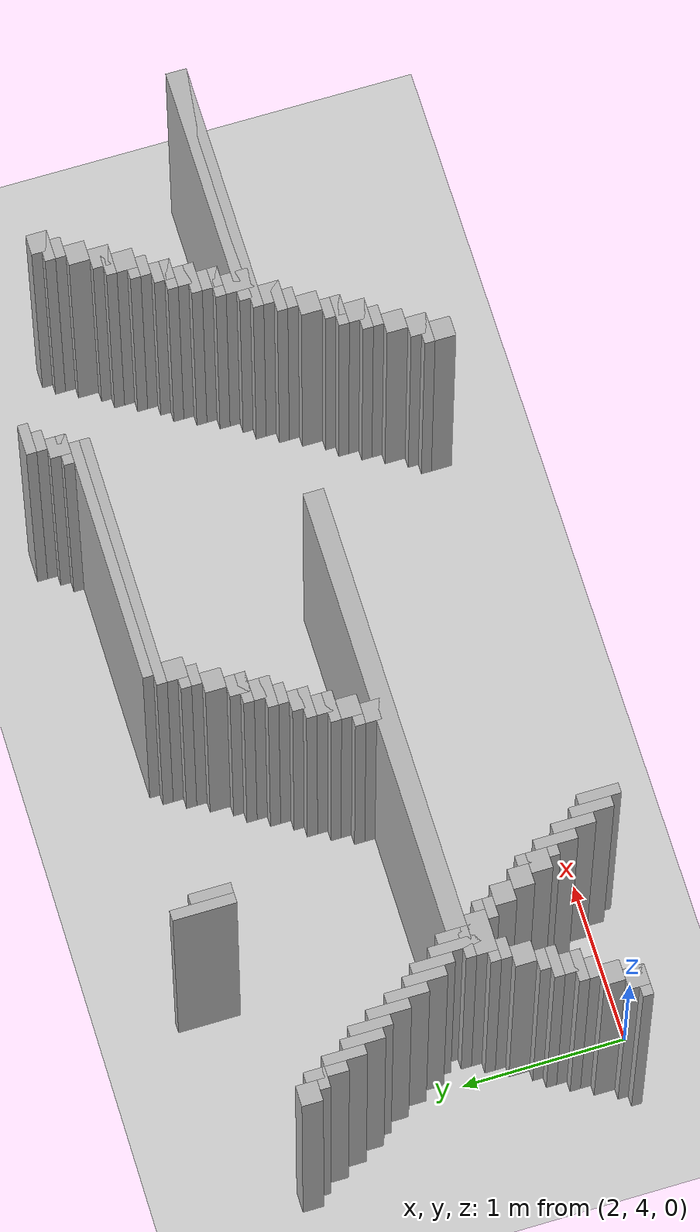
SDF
<sdf version="1.6">
 <world name="slam_world">
  <model name="ground_plane">
   <static>true</static>
   <link name="link">
    <collision name="collision">
     <geometry><plane><normal>0 0 1</normal><size>100 100</size></plane></geometry>
    </collision>
    <visual name="visual">
     <geometry><plane><normal>0 0 1</normal><size>100 100</size></plane></geometry>
     <material>
      <ambient>0.8 0.8 0.8 1</ambient>
      <diffuse>0.8 0.8 0.8 1</diffuse>
      <specular>0.8 0.8 0.8 1</specular>
     </material>
    </visual>
   </link>
  </model>
  <model name="wall_1708">
   <static>true</static>
   <pose>2.840425531914893 6.319148936170213 1.0 0 0 0</pose>
   <link name="link">
    <collision name="collision">
     <geometry><box><size>0.06382978723404255 0.3829787234042553 2.0</size></box></geometry>
    </collision>
    <visual name="visual">
     <geometry><box><size>0.06382978723404255 0.3829787234042553 2.0</size></box></geometry>
     <material><ambient>0.5 0.5 0.5 1</ambient><diffuse>0.7 0.7 0.7 1</diffuse></material>
    </visual>
   </link>
  </model>
  <model name="wall_1709">
   <static>true</static>
   <pose>5.904255319148936 6.478723404255319 1.0 0 0 0</pose>
   <link name="link">
    <collision name="collision">
     <geometry><box><size>0.19148936170212766 0.06382978723404255 2.0</size></box></geometry>
    </collision>
    <visual name="visual">
     <geometry><box><size>0.19148936170212766 0.06382978723404255 2.0</size></box></geometry>
     <material><ambient>0.5 0.5 0.5 1</ambient><diffuse>0.7 0.7 0.7 1</diffuse></material>
    </visual>
   </link>
  </model>
  <model name="wall_1716">
   <static>true</static>
   <pose>5.872340425531914 6.414893617021276 1.0 0 0 0</pose>
   <link name="link">
    <collision name="collision">
     <geometry><box><size>0.1276595744680851 0.06382978723404255 2.0</size></box></geometry>
    </collision>
    <visual name="visual">
     <geometry><box><size>0.1276595744680851 0.06382978723404255 2.0</size></box></geometry>
     <material><ambient>0.5 0.5 0.5 1</ambient><diffuse>0.7 0.7 0.7 1</diffuse></material>
    </visual>
   </link>
  </model>
  <model name="wall_1720">
   <static>true</static>
   <pose>2.9042553191489358 6.25531914893617 1.0 0 0 0</pose>
   <link name="link">
    <collision name="collision">
     <geometry><box><size>0.06382978723404255 0.2553191489361702 2.0</size></box></geometry>
    </collision>
    <visual name="visual">
     <geometry><box><size>0.06382978723404255 0.2553191489361702 2.0</size></box></geometry>
     <material><ambient>0.5 0.5 0.5 1</ambient><diffuse>0.7 0.7 0.7 1</diffuse></material>
    </visual>
   </link>
  </model>
  <model name="wall_1721">
   <static>true</static>
   <pose>5.8085106382978715 6.319148936170213 1.0 0 0 0</pose>
   <link name="link">
    <collision name="collision">
     <geometry><box><size>0.1276595744680851 0.1276595744680851 2.0</size></box></geometry>
    </collision>
    <visual name="visual">
     <geometry><box><size>0.1276595744680851 0.1276595744680851 2.0</size></box></geometry>
     <material><ambient>0.5 0.5 0.5 1</ambient><diffuse>0.7 0.7 0.7 1</diffuse></material>
    </visual>
   </link>
  </model>
  <model name="wall_1725">
   <static>true</static>
   <pose>5.776595744680851 6.287234042553191 1.0 0 0 0</pose>
   <link name="link">
    <collision name="collision">
     <geometry><box><size>0.19148936170212766 0.06382978723404255 2.0</size></box></geometry>
    </collision>
    <visual name="visual">
     <geometry><box><size>0.19148936170212766 0.06382978723404255 2.0</size></box></geometry>
     <material><ambient>0.5 0.5 0.5 1</ambient><diffuse>0.7 0.7 0.7 1</diffuse></material>
    </visual>
   </link>
  </model>
  <model name="wall_1728">
   <static>true</static>
   <pose>5.042553191489361 6.191489361702128 1.0 0 0 0</pose>
   <link name="link">
    <collision name="collision">
     <geometry><box><size>1.5319148936170213 0.1276595744680851 2.0</size></box></geometry>
    </collision>
    <visual name="visual">
     <geometry><box><size>1.5319148936170213 0.1276595744680851 2.0</size></box></geometry>
     <material><ambient>0.5 0.5 0.5 1</ambient><diffuse>0.7 0.7 0.7 1</diffuse></material>
    </visual>
   </link>
  </model>
  <model name="wall_1733">
   <static>true</static>
   <pose>5.01063829787234 6.159574468085106 1.0 0 0 0</pose>
   <link name="link">
    <collision name="collision">
     <geometry><box><size>1.5957446808510638 0.06382978723404255 2.0</size></box></geometry>
    </collision>
    <visual name="visual">
     <geometry><box><size>1.5957446808510638 0.06382978723404255 2.0</size></box></geometry>
     <material><ambient>0.5 0.5 0.5 1</ambient><diffuse>0.7 0.7 0.7 1</diffuse></material>
    </visual>
   </link>
  </model>
  <model name="wall_1738">
   <static>true</static>
   <pose>1.5957446808510638 6.063829787234042 1.0 0 0 0</pose>
   <link name="link">
    <collision name="collision">
     <geometry><box><size>0.1276595744680851 0.1276595744680851 2.0</size></box></geometry>
    </collision>
    <visual name="visual">
     <geometry><box><size>0.1276595744680851 0.1276595744680851 2.0</size></box></geometry>
     <material><ambient>0.5 0.5 0.5 1</ambient><diffuse>0.7 0.7 0.7 1</diffuse></material>
    </visual>
   </link>
  </model>
  <model name="wall_1739">
   <static>true</static>
   <pose>4.276595744680851 6.063829787234042 1.0 0 0 0</pose>
   <link name="link">
    <collision name="collision">
     <geometry><box><size>0.1276595744680851 0.1276595744680851 2.0</size></box></geometry>
    </collision>
    <visual name="visual">
     <geometry><box><size>0.1276595744680851 0.1276595744680851 2.0</size></box></geometry>
     <material><ambient>0.5 0.5 0.5 1</ambient><diffuse>0.7 0.7 0.7 1</diffuse></material>
    </visual>
   </link>
  </model>
  <model name="wall_1740">
   <static>true</static>
   <pose>7.085106382978723 6.063829787234042 1.0 0 0 0</pose>
   <link name="link">
    <collision name="collision">
     <geometry><box><size>0.1276595744680851 0.1276595744680851 2.0</size></box></geometry>
    </collision>
    <visual name="visual">
     <geometry><box><size>0.1276595744680851 0.1276595744680851 2.0</size></box></geometry>
     <material><ambient>0.5 0.5 0.5 1</ambient><diffuse>0.7 0.7 0.7 1</diffuse></material>
    </visual>
   </link>
  </model>
  <model name="wall_1743">
   <static>true</static>
   <pose>1.6914893617021276 5.936170212765957 1.0 0 0 0</pose>
   <link name="link">
    <collision name="collision">
     <geometry><box><size>0.06382978723404255 0.2553191489361702 2.0</size></box></geometry>
    </collision>
    <visual name="visual">
     <geometry><box><size>0.06382978723404255 0.2553191489361702 2.0</size></box></geometry>
     <material><ambient>0.5 0.5 0.5 1</ambient><diffuse>0.7 0.7 0.7 1</diffuse></material>
    </visual>
   </link>
  </model>
  <model name="wall_1744">
   <static>true</static>
   <pose>4.24468085106383 6.031914893617021 1.0 0 0 0</pose>
   <link name="link">
    <collision name="collision">
     <geometry><box><size>0.19148936170212766 0.06382978723404255 2.0</size></box></geometry>
    </collision>
    <visual name="visual">
     <geometry><box><size>0.19148936170212766 0.06382978723404255 2.0</size></box></geometry>
     <material><ambient>0.5 0.5 0.5 1</ambient><diffuse>0.7 0.7 0.7 1</diffuse></material>
    </visual>
   </link>
  </model>
  <model name="wall_1745">
   <static>true</static>
   <pose>7.053191489361701 6.031914893617021 1.0 0 0 0</pose>
   <link name="link">
    <collision name="collision">
     <geometry><box><size>0.19148936170212766 0.06382978723404255 2.0</size></box></geometry>
    </collision>
    <visual name="visual">
     <geometry><box><size>0.19148936170212766 0.06382978723404255 2.0</size></box></geometry>
     <material><ambient>0.5 0.5 0.5 1</ambient><diffuse>0.7 0.7 0.7 1</diffuse></material>
    </visual>
   </link>
  </model>
  <model name="wall_1750">
   <static>true</static>
   <pose>1.6595744680851063 5.968085106382978 1.0 0 0 0</pose>
   <link name="link">
    <collision name="collision">
     <geometry><box><size>0.1276595744680851 0.06382978723404255 2.0</size></box></geometry>
    </collision>
    <visual name="visual">
     <geometry><box><size>0.1276595744680851 0.06382978723404255 2.0</size></box></geometry>
     <material><ambient>0.5 0.5 0.5 1</ambient><diffuse>0.7 0.7 0.7 1</diffuse></material>
    </visual>
   </link>
  </model>
  <model name="wall_1751">
   <static>true</static>
   <pose>4.212765957446808 5.968085106382978 1.0 0 0 0</pose>
   <link name="link">
    <collision name="collision">
     <geometry><box><size>0.1276595744680851 0.06382978723404255 2.0</size></box></geometry>
    </collision>
    <visual name="visual">
     <geometry><box><size>0.1276595744680851 0.06382978723404255 2.0</size></box></geometry>
     <material><ambient>0.5 0.5 0.5 1</ambient><diffuse>0.7 0.7 0.7 1</diffuse></material>
    </visual>
   </link>
  </model>
  <model name="wall_1752">
   <static>true</static>
   <pose>7.0212765957446805 5.968085106382978 1.0 0 0 0</pose>
   <link name="link">
    <collision name="collision">
     <geometry><box><size>0.1276595744680851 0.06382978723404255 2.0</size></box></geometry>
    </collision>
    <visual name="visual">
     <geometry><box><size>0.1276595744680851 0.06382978723404255 2.0</size></box></geometry>
     <material><ambient>0.5 0.5 0.5 1</ambient><diffuse>0.7 0.7 0.7 1</diffuse></material>
    </visual>
   </link>
  </model>
  <model name="wall_1759">
   <static>true</static>
   <pose>1.7553191489361701 5.8085106382978715 1.0 0 0 0</pose>
   <link name="link">
    <collision name="collision">
     <geometry><box><size>0.06382978723404255 0.2553191489361702 2.0</size></box></geometry>
    </collision>
    <visual name="visual">
     <geometry><box><size>0.06382978723404255 0.2553191489361702 2.0</size></box></geometry>
     <material><ambient>0.5 0.5 0.5 1</ambient><diffuse>0.7 0.7 0.7 1</diffuse></material>
    </visual>
   </link>
  </model>
  <model name="wall_1760">
   <static>true</static>
   <pose>4.148936170212766 5.872340425531914 1.0 0 0 0</pose>
   <link name="link">
    <collision name="collision">
     <geometry><box><size>0.1276595744680851 0.1276595744680851 2.0</size></box></geometry>
    </collision>
    <visual name="visual">
     <geometry><box><size>0.1276595744680851 0.1276595744680851 2.0</size></box></geometry>
     <material><ambient>0.5 0.5 0.5 1</ambient><diffuse>0.7 0.7 0.7 1</diffuse></material>
    </visual>
   </link>
  </model>
  <model name="wall_1761">
   <static>true</static>
   <pose>6.957446808510638 5.872340425531914 1.0 0 0 0</pose>
   <link name="link">
    <collision name="collision">
     <geometry><box><size>0.1276595744680851 0.1276595744680851 2.0</size></box></geometry>
    </collision>
    <visual name="visual">
     <geometry><box><size>0.1276595744680851 0.1276595744680851 2.0</size></box></geometry>
     <material><ambient>0.5 0.5 0.5 1</ambient><diffuse>0.7 0.7 0.7 1</diffuse></material>
    </visual>
   </link>
  </model>
  <model name="wall_1768">
   <static>true</static>
   <pose>1.8191489361702127 5.680851063829786 1.0 0 0 0</pose>
   <link name="link">
    <collision name="collision">
     <geometry><box><size>0.06382978723404255 0.2553191489361702 2.0</size></box></geometry>
    </collision>
    <visual name="visual">
     <geometry><box><size>0.06382978723404255 0.2553191489361702 2.0</size></box></geometry>
     <material><ambient>0.5 0.5 0.5 1</ambient><diffuse>0.7 0.7 0.7 1</diffuse></material>
    </visual>
   </link>
  </model>
  <model name="wall_1769">
   <static>true</static>
   <pose>4.085106382978723 5.744680851063829 1.0 0 0 0</pose>
   <link name="link">
    <collision name="collision">
     <geometry><box><size>0.1276595744680851 0.1276595744680851 2.0</size></box></geometry>
    </collision>
    <visual name="visual">
     <geometry><box><size>0.1276595744680851 0.1276595744680851 2.0</size></box></geometry>
     <material><ambient>0.5 0.5 0.5 1</ambient><diffuse>0.7 0.7 0.7 1</diffuse></material>
    </visual>
   </link>
  </model>
  <model name="wall_1770">
   <static>true</static>
   <pose>6.8936170212765955 5.744680851063829 1.0 0 0 0</pose>
   <link name="link">
    <collision name="collision">
     <geometry><box><size>0.1276595744680851 0.1276595744680851 2.0</size></box></geometry>
    </collision>
    <visual name="visual">
     <geometry><box><size>0.1276595744680851 0.1276595744680851 2.0</size></box></geometry>
     <material><ambient>0.5 0.5 0.5 1</ambient><diffuse>0.7 0.7 0.7 1</diffuse></material>
    </visual>
   </link>
  </model>
  <model name="wall_1777">
   <static>true</static>
   <pose>1.8829787234042552 5.617021276595744 1.0 0 0 0</pose>
   <link name="link">
    <collision name="collision">
     <geometry><box><size>0.06382978723404255 0.2553191489361702 2.0</size></box></geometry>
    </collision>
    <visual name="visual">
     <geometry><box><size>0.06382978723404255 0.2553191489361702 2.0</size></box></geometry>
     <material><ambient>0.5 0.5 0.5 1</ambient><diffuse>0.7 0.7 0.7 1</diffuse></material>
    </visual>
   </link>
  </model>
  <model name="wall_1778">
   <static>true</static>
   <pose>4.053191489361701 5.712765957446808 1.0 0 0 0</pose>
   <link name="link">
    <collision name="collision">
     <geometry><box><size>0.19148936170212766 0.06382978723404255 2.0</size></box></geometry>
    </collision>
    <visual name="visual">
     <geometry><box><size>0.19148936170212766 0.06382978723404255 2.0</size></box></geometry>
     <material><ambient>0.5 0.5 0.5 1</ambient><diffuse>0.7 0.7 0.7 1</diffuse></material>
    </visual>
   </link>
  </model>
  <model name="wall_1779">
   <static>true</static>
   <pose>6.861702127659574 5.712765957446808 1.0 0 0 0</pose>
   <link name="link">
    <collision name="collision">
     <geometry><box><size>0.19148936170212766 0.06382978723404255 2.0</size></box></geometry>
    </collision>
    <visual name="visual">
     <geometry><box><size>0.19148936170212766 0.06382978723404255 2.0</size></box></geometry>
     <material><ambient>0.5 0.5 0.5 1</ambient><diffuse>0.7 0.7 0.7 1</diffuse></material>
    </visual>
   </link>
  </model>
  <model name="wall_1785">
   <static>true</static>
   <pose>4.0212765957446805 5.617021276595744 1.0 0 0 0</pose>
   <link name="link">
    <collision name="collision">
     <geometry><box><size>0.1276595744680851 0.1276595744680851 2.0</size></box></geometry>
    </collision>
    <visual name="visual">
     <geometry><box><size>0.1276595744680851 0.1276595744680851 2.0</size></box></geometry>
     <material><ambient>0.5 0.5 0.5 1</ambient><diffuse>0.7 0.7 0.7 1</diffuse></material>
    </visual>
   </link>
  </model>
  <model name="wall_1786">
   <static>true</static>
   <pose>6.829787234042553 5.617021276595744 1.0 0 0 0</pose>
   <link name="link">
    <collision name="collision">
     <geometry><box><size>0.1276595744680851 0.1276595744680851 2.0</size></box></geometry>
    </collision>
    <visual name="visual">
     <geometry><box><size>0.1276595744680851 0.1276595744680851 2.0</size></box></geometry>
     <material><ambient>0.5 0.5 0.5 1</ambient><diffuse>0.7 0.7 0.7 1</diffuse></material>
    </visual>
   </link>
  </model>
  <model name="wall_1792">
   <static>true</static>
   <pose>1.9468085106382977 5.489361702127659 1.0 0 0 0</pose>
   <link name="link">
    <collision name="collision">
     <geometry><box><size>0.06382978723404255 0.2553191489361702 2.0</size></box></geometry>
    </collision>
    <visual name="visual">
     <geometry><box><size>0.06382978723404255 0.2553191489361702 2.0</size></box></geometry>
     <material><ambient>0.5 0.5 0.5 1</ambient><diffuse>0.7 0.7 0.7 1</diffuse></material>
    </visual>
   </link>
  </model>
  <model name="wall_1793">
   <static>true</static>
   <pose>3.9893617021276593 5.585106382978723 1.0 0 0 0</pose>
   <link name="link">
    <collision name="collision">
     <geometry><box><size>0.19148936170212766 0.06382978723404255 2.0</size></box></geometry>
    </collision>
    <visual name="visual">
     <geometry><box><size>0.19148936170212766 0.06382978723404255 2.0</size></box></geometry>
     <material><ambient>0.5 0.5 0.5 1</ambient><diffuse>0.7 0.7 0.7 1</diffuse></material>
    </visual>
   </link>
  </model>
  <model name="wall_1794">
   <static>true</static>
   <pose>6.797872340425531 5.585106382978723 1.0 0 0 0</pose>
   <link name="link">
    <collision name="collision">
     <geometry><box><size>0.19148936170212766 0.06382978723404255 2.0</size></box></geometry>
    </collision>
    <visual name="visual">
     <geometry><box><size>0.19148936170212766 0.06382978723404255 2.0</size></box></geometry>
     <material><ambient>0.5 0.5 0.5 1</ambient><diffuse>0.7 0.7 0.7 1</diffuse></material>
    </visual>
   </link>
  </model>
  <model name="wall_1800">
   <static>true</static>
   <pose>3.957446808510638 5.5212765957446805 1.0 0 0 0</pose>
   <link name="link">
    <collision name="collision">
     <geometry><box><size>0.1276595744680851 0.06382978723404255 2.0</size></box></geometry>
    </collision>
    <visual name="visual">
     <geometry><box><size>0.1276595744680851 0.06382978723404255 2.0</size></box></geometry>
     <material><ambient>0.5 0.5 0.5 1</ambient><diffuse>0.7 0.7 0.7 1</diffuse></material>
    </visual>
   </link>
  </model>
  <model name="wall_1801">
   <static>true</static>
   <pose>6.76595744680851 5.5212765957446805 1.0 0 0 0</pose>
   <link name="link">
    <collision name="collision">
     <geometry><box><size>0.1276595744680851 0.06382978723404255 2.0</size></box></geometry>
    </collision>
    <visual name="visual">
     <geometry><box><size>0.1276595744680851 0.06382978723404255 2.0</size></box></geometry>
     <material><ambient>0.5 0.5 0.5 1</ambient><diffuse>0.7 0.7 0.7 1</diffuse></material>
    </visual>
   </link>
  </model>
  <model name="wall_1806">
   <static>true</static>
   <pose>2.0106382978723403 5.361702127659574 1.0 0 0 0</pose>
   <link name="link">
    <collision name="collision">
     <geometry><box><size>0.06382978723404255 0.2553191489361702 2.0</size></box></geometry>
    </collision>
    <visual name="visual">
     <geometry><box><size>0.06382978723404255 0.2553191489361702 2.0</size></box></geometry>
     <material><ambient>0.5 0.5 0.5 1</ambient><diffuse>0.7 0.7 0.7 1</diffuse></material>
    </visual>
   </link>
  </model>
  <model name="wall_1807">
   <static>true</static>
   <pose>3.8936170212765955 5.425531914893616 1.0 0 0 0</pose>
   <link name="link">
    <collision name="collision">
     <geometry><box><size>0.1276595744680851 0.1276595744680851 2.0</size></box></geometry>
    </collision>
    <visual name="visual">
     <geometry><box><size>0.1276595744680851 0.1276595744680851 2.0</size></box></geometry>
     <material><ambient>0.5 0.5 0.5 1</ambient><diffuse>0.7 0.7 0.7 1</diffuse></material>
    </visual>
   </link>
  </model>
  <model name="wall_1808">
   <static>true</static>
   <pose>6.702127659574468 5.425531914893616 1.0 0 0 0</pose>
   <link name="link">
    <collision name="collision">
     <geometry><box><size>0.1276595744680851 0.1276595744680851 2.0</size></box></geometry>
    </collision>
    <visual name="visual">
     <geometry><box><size>0.1276595744680851 0.1276595744680851 2.0</size></box></geometry>
     <material><ambient>0.5 0.5 0.5 1</ambient><diffuse>0.7 0.7 0.7 1</diffuse></material>
    </visual>
   </link>
  </model>
  <model name="wall_1814">
   <static>true</static>
   <pose>3.861702127659574 5.3936170212765955 1.0 0 0 0</pose>
   <link name="link">
    <collision name="collision">
     <geometry><box><size>0.19148936170212766 0.06382978723404255 2.0</size></box></geometry>
    </collision>
    <visual name="visual">
     <geometry><box><size>0.19148936170212766 0.06382978723404255 2.0</size></box></geometry>
     <material><ambient>0.5 0.5 0.5 1</ambient><diffuse>0.7 0.7 0.7 1</diffuse></material>
    </visual>
   </link>
  </model>
  <model name="wall_1815">
   <static>true</static>
   <pose>6.670212765957446 5.3936170212765955 1.0 0 0 0</pose>
   <link name="link">
    <collision name="collision">
     <geometry><box><size>0.19148936170212766 0.06382978723404255 2.0</size></box></geometry>
    </collision>
    <visual name="visual">
     <geometry><box><size>0.19148936170212766 0.06382978723404255 2.0</size></box></geometry>
     <material><ambient>0.5 0.5 0.5 1</ambient><diffuse>0.7 0.7 0.7 1</diffuse></material>
    </visual>
   </link>
  </model>
  <model name="wall_1820">
   <static>true</static>
   <pose>2.074468085106383 5.234042553191489 1.0 0 0 0</pose>
   <link name="link">
    <collision name="collision">
     <geometry><box><size>0.06382978723404255 0.2553191489361702 2.0</size></box></geometry>
    </collision>
    <visual name="visual">
     <geometry><box><size>0.06382978723404255 0.2553191489361702 2.0</size></box></geometry>
     <material><ambient>0.5 0.5 0.5 1</ambient><diffuse>0.7 0.7 0.7 1</diffuse></material>
    </visual>
   </link>
  </model>
  <model name="wall_1821">
   <static>true</static>
   <pose>3.829787234042553 5.297872340425531 1.0 0 0 0</pose>
   <link name="link">
    <collision name="collision">
     <geometry><box><size>0.1276595744680851 0.1276595744680851 2.0</size></box></geometry>
    </collision>
    <visual name="visual">
     <geometry><box><size>0.1276595744680851 0.1276595744680851 2.0</size></box></geometry>
     <material><ambient>0.5 0.5 0.5 1</ambient><diffuse>0.7 0.7 0.7 1</diffuse></material>
    </visual>
   </link>
  </model>
  <model name="wall_1822">
   <static>true</static>
   <pose>6.638297872340425 5.297872340425531 1.0 0 0 0</pose>
   <link name="link">
    <collision name="collision">
     <geometry><box><size>0.1276595744680851 0.1276595744680851 2.0</size></box></geometry>
    </collision>
    <visual name="visual">
     <geometry><box><size>0.1276595744680851 0.1276595744680851 2.0</size></box></geometry>
     <material><ambient>0.5 0.5 0.5 1</ambient><diffuse>0.7 0.7 0.7 1</diffuse></material>
    </visual>
   </link>
  </model>
  <model name="wall_1829">
   <static>true</static>
   <pose>2.1382978723404253 5.170212765957446 1.0 0 0 0</pose>
   <link name="link">
    <collision name="collision">
     <geometry><box><size>0.06382978723404255 0.2553191489361702 2.0</size></box></geometry>
    </collision>
    <visual name="visual">
     <geometry><box><size>0.06382978723404255 0.2553191489361702 2.0</size></box></geometry>
     <material><ambient>0.5 0.5 0.5 1</ambient><diffuse>0.7 0.7 0.7 1</diffuse></material>
    </visual>
   </link>
  </model>
  <model name="wall_1830">
   <static>true</static>
   <pose>3.7978723404255317 5.26595744680851 1.0 0 0 0</pose>
   <link name="link">
    <collision name="collision">
     <geometry><box><size>0.19148936170212766 0.06382978723404255 2.0</size></box></geometry>
    </collision>
    <visual name="visual">
     <geometry><box><size>0.19148936170212766 0.06382978723404255 2.0</size></box></geometry>
     <material><ambient>0.5 0.5 0.5 1</ambient><diffuse>0.7 0.7 0.7 1</diffuse></material>
    </visual>
   </link>
  </model>
  <model name="wall_1831">
   <static>true</static>
   <pose>6.606382978723404 5.26595744680851 1.0 0 0 0</pose>
   <link name="link">
    <collision name="collision">
     <geometry><box><size>0.19148936170212766 0.06382978723404255 2.0</size></box></geometry>
    </collision>
    <visual name="visual">
     <geometry><box><size>0.19148936170212766 0.06382978723404255 2.0</size></box></geometry>
     <material><ambient>0.5 0.5 0.5 1</ambient><diffuse>0.7 0.7 0.7 1</diffuse></material>
    </visual>
   </link>
  </model>
  <model name="wall_1837">
   <static>true</static>
   <pose>3.7659574468085104 5.170212765957446 1.0 0 0 0</pose>
   <link name="link">
    <collision name="collision">
     <geometry><box><size>0.1276595744680851 0.1276595744680851 2.0</size></box></geometry>
    </collision>
    <visual name="visual">
     <geometry><box><size>0.1276595744680851 0.1276595744680851 2.0</size></box></geometry>
     <material><ambient>0.5 0.5 0.5 1</ambient><diffuse>0.7 0.7 0.7 1</diffuse></material>
    </visual>
   </link>
  </model>
  <model name="wall_1838">
   <static>true</static>
   <pose>6.574468085106383 5.170212765957446 1.0 0 0 0</pose>
   <link name="link">
    <collision name="collision">
     <geometry><box><size>0.1276595744680851 0.1276595744680851 2.0</size></box></geometry>
    </collision>
    <visual name="visual">
     <geometry><box><size>0.1276595744680851 0.1276595744680851 2.0</size></box></geometry>
     <material><ambient>0.5 0.5 0.5 1</ambient><diffuse>0.7 0.7 0.7 1</diffuse></material>
    </visual>
   </link>
  </model>
  <model name="wall_1843">
   <static>true</static>
   <pose>2.202127659574468 4.978723404255319 1.0 0 0 0</pose>
   <link name="link">
    <collision name="collision">
     <geometry><box><size>0.06382978723404255 0.3829787234042553 2.0</size></box></geometry>
    </collision>
    <visual name="visual">
     <geometry><box><size>0.06382978723404255 0.3829787234042553 2.0</size></box></geometry>
     <material><ambient>0.5 0.5 0.5 1</ambient><diffuse>0.7 0.7 0.7 1</diffuse></material>
    </visual>
   </link>
  </model>
  <model name="wall_1844">
   <static>true</static>
   <pose>3.734042553191489 5.138297872340425 1.0 0 0 0</pose>
   <link name="link">
    <collision name="collision">
     <geometry><box><size>0.19148936170212766 0.06382978723404255 2.0</size></box></geometry>
    </collision>
    <visual name="visual">
     <geometry><box><size>0.19148936170212766 0.06382978723404255 2.0</size></box></geometry>
     <material><ambient>0.5 0.5 0.5 1</ambient><diffuse>0.7 0.7 0.7 1</diffuse></material>
    </visual>
   </link>
  </model>
  <model name="wall_1845">
   <static>true</static>
   <pose>6.542553191489361 5.138297872340425 1.0 0 0 0</pose>
   <link name="link">
    <collision name="collision">
     <geometry><box><size>0.19148936170212766 0.06382978723404255 2.0</size></box></geometry>
    </collision>
    <visual name="visual">
     <geometry><box><size>0.19148936170212766 0.06382978723404255 2.0</size></box></geometry>
     <material><ambient>0.5 0.5 0.5 1</ambient><diffuse>0.7 0.7 0.7 1</diffuse></material>
    </visual>
   </link>
  </model>
  <model name="wall_1850">
   <static>true</static>
   <pose>2.2659574468085104 4.946808510638298 1.0 0 0 0</pose>
   <link name="link">
    <collision name="collision">
     <geometry><box><size>0.06382978723404255 0.3191489361702127 2.0</size></box></geometry>
    </collision>
    <visual name="visual">
     <geometry><box><size>0.06382978723404255 0.3191489361702127 2.0</size></box></geometry>
     <material><ambient>0.5 0.5 0.5 1</ambient><diffuse>0.7 0.7 0.7 1</diffuse></material>
    </visual>
   </link>
  </model>
  <model name="wall_1851">
   <static>true</static>
   <pose>3.702127659574468 5.01063829787234 1.0 0 0 0</pose>
   <link name="link">
    <collision name="collision">
     <geometry><box><size>0.1276595744680851 0.19148936170212766 2.0</size></box></geometry>
    </collision>
    <visual name="visual">
     <geometry><box><size>0.1276595744680851 0.19148936170212766 2.0</size></box></geometry>
     <material><ambient>0.5 0.5 0.5 1</ambient><diffuse>0.7 0.7 0.7 1</diffuse></material>
    </visual>
   </link>
  </model>
  <model name="wall_1852">
   <static>true</static>
   <pose>6.51063829787234 5.01063829787234 1.0 0 0 0</pose>
   <link name="link">
    <collision name="collision">
     <geometry><box><size>0.1276595744680851 0.19148936170212766 2.0</size></box></geometry>
    </collision>
    <visual name="visual">
     <geometry><box><size>0.1276595744680851 0.19148936170212766 2.0</size></box></geometry>
     <material><ambient>0.5 0.5 0.5 1</ambient><diffuse>0.7 0.7 0.7 1</diffuse></material>
    </visual>
   </link>
  </model>
  <model name="wall_1857">
   <static>true</static>
   <pose>3.702127659574468 4.978723404255319 1.0 0 0 0</pose>
   <link name="link">
    <collision name="collision">
     <geometry><box><size>2.808510638297872 0.1276595744680851 2.0</size></box></geometry>
    </collision>
    <visual name="visual">
     <geometry><box><size>2.808510638297872 0.1276595744680851 2.0</size></box></geometry>
     <material><ambient>0.5 0.5 0.5 1</ambient><diffuse>0.7 0.7 0.7 1</diffuse></material>
    </visual>
   </link>
  </model>
  <model name="wall_1858">
   <static>true</static>
   <pose>7.148936170212766 4.978723404255319 1.0 0 0 0</pose>
   <link name="link">
    <collision name="collision">
     <geometry><box><size>1.5319148936170213 0.1276595744680851 2.0</size></box></geometry>
    </collision>
    <visual name="visual">
     <geometry><box><size>1.5319148936170213 0.1276595744680851 2.0</size></box></geometry>
     <material><ambient>0.5 0.5 0.5 1</ambient><diffuse>0.7 0.7 0.7 1</diffuse></material>
    </visual>
   </link>
  </model>
  <model name="wall_1863">
   <static>true</static>
   <pose>3.606382978723404 4.946808510638298 1.0 0 0 0</pose>
   <link name="link">
    <collision name="collision">
     <geometry><box><size>2.9999999999999996 0.06382978723404255 2.0</size></box></geometry>
    </collision>
    <visual name="visual">
     <geometry><box><size>2.9999999999999996 0.06382978723404255 2.0</size></box></geometry>
     <material><ambient>0.5 0.5 0.5 1</ambient><diffuse>0.7 0.7 0.7 1</diffuse></material>
    </visual>
   </link>
  </model>
  <model name="wall_1864">
   <static>true</static>
   <pose>7.117021276595744 4.946808510638298 1.0 0 0 0</pose>
   <link name="link">
    <collision name="collision">
     <geometry><box><size>1.5957446808510638 0.06382978723404255 2.0</size></box></geometry>
    </collision>
    <visual name="visual">
     <geometry><box><size>1.5957446808510638 0.06382978723404255 2.0</size></box></geometry>
     <material><ambient>0.5 0.5 0.5 1</ambient><diffuse>0.7 0.7 0.7 1</diffuse></material>
    </visual>
   </link>
  </model>
  <model name="wall_1868">
   <static>true</static>
   <pose>2.234042553191489 4.8510638297872335 1.0 0 0 0</pose>
   <link name="link">
    <collision name="collision">
     <geometry><box><size>0.2553191489361702 0.1276595744680851 2.0</size></box></geometry>
    </collision>
    <visual name="visual">
     <geometry><box><size>0.2553191489361702 0.1276595744680851 2.0</size></box></geometry>
     <material><ambient>0.5 0.5 0.5 1</ambient><diffuse>0.7 0.7 0.7 1</diffuse></material>
    </visual>
   </link>
  </model>
  <model name="wall_1869">
   <static>true</static>
   <pose>6.382978723404255 4.8510638297872335 1.0 0 0 0</pose>
   <link name="link">
    <collision name="collision">
     <geometry><box><size>0.1276595744680851 0.1276595744680851 2.0</size></box></geometry>
    </collision>
    <visual name="visual">
     <geometry><box><size>0.1276595744680851 0.1276595744680851 2.0</size></box></geometry>
     <material><ambient>0.5 0.5 0.5 1</ambient><diffuse>0.7 0.7 0.7 1</diffuse></material>
    </visual>
   </link>
  </model>
  <model name="wall_1873">
   <static>true</static>
   <pose>2.234042553191489 4.819148936170213 1.0 0 0 0</pose>
   <link name="link">
    <collision name="collision">
     <geometry><box><size>0.3829787234042553 0.06382978723404255 2.0</size></box></geometry>
    </collision>
    <visual name="visual">
     <geometry><box><size>0.3829787234042553 0.06382978723404255 2.0</size></box></geometry>
     <material><ambient>0.5 0.5 0.5 1</ambient><diffuse>0.7 0.7 0.7 1</diffuse></material>
    </visual>
   </link>
  </model>
  <model name="wall_1874">
   <static>true</static>
   <pose>6.3510638297872335 4.819148936170213 1.0 0 0 0</pose>
   <link name="link">
    <collision name="collision">
     <geometry><box><size>0.19148936170212766 0.06382978723404255 2.0</size></box></geometry>
    </collision>
    <visual name="visual">
     <geometry><box><size>0.19148936170212766 0.06382978723404255 2.0</size></box></geometry>
     <material><ambient>0.5 0.5 0.5 1</ambient><diffuse>0.7 0.7 0.7 1</diffuse></material>
    </visual>
   </link>
  </model>
  <model name="wall_1878">
   <static>true</static>
   <pose>2.106382978723404 4.75531914893617 1.0 0 0 0</pose>
   <link name="link">
    <collision name="collision">
     <geometry><box><size>0.1276595744680851 0.06382978723404255 2.0</size></box></geometry>
    </collision>
    <visual name="visual">
     <geometry><box><size>0.1276595744680851 0.06382978723404255 2.0</size></box></geometry>
     <material><ambient>0.5 0.5 0.5 1</ambient><diffuse>0.7 0.7 0.7 1</diffuse></material>
    </visual>
   </link>
  </model>
  <model name="wall_1879">
   <static>true</static>
   <pose>2.361702127659574 4.75531914893617 1.0 0 0 0</pose>
   <link name="link">
    <collision name="collision">
     <geometry><box><size>0.1276595744680851 0.06382978723404255 2.0</size></box></geometry>
    </collision>
    <visual name="visual">
     <geometry><box><size>0.1276595744680851 0.06382978723404255 2.0</size></box></geometry>
     <material><ambient>0.5 0.5 0.5 1</ambient><diffuse>0.7 0.7 0.7 1</diffuse></material>
    </visual>
   </link>
  </model>
  <model name="wall_1880">
   <static>true</static>
   <pose>6.319148936170213 4.75531914893617 1.0 0 0 0</pose>
   <link name="link">
    <collision name="collision">
     <geometry><box><size>0.1276595744680851 0.06382978723404255 2.0</size></box></geometry>
    </collision>
    <visual name="visual">
     <geometry><box><size>0.1276595744680851 0.06382978723404255 2.0</size></box></geometry>
     <material><ambient>0.5 0.5 0.5 1</ambient><diffuse>0.7 0.7 0.7 1</diffuse></material>
    </visual>
   </link>
  </model>
  <model name="wall_1884">
   <static>true</static>
   <pose>2.0425531914893615 4.659574468085106 1.0 0 0 0</pose>
   <link name="link">
    <collision name="collision">
     <geometry><box><size>0.1276595744680851 0.1276595744680851 2.0</size></box></geometry>
    </collision>
    <visual name="visual">
     <geometry><box><size>0.1276595744680851 0.1276595744680851 2.0</size></box></geometry>
     <material><ambient>0.5 0.5 0.5 1</ambient><diffuse>0.7 0.7 0.7 1</diffuse></material>
    </visual>
   </link>
  </model>
  <model name="wall_1885">
   <static>true</static>
   <pose>2.4255319148936167 4.659574468085106 1.0 0 0 0</pose>
   <link name="link">
    <collision name="collision">
     <geometry><box><size>0.1276595744680851 0.1276595744680851 2.0</size></box></geometry>
    </collision>
    <visual name="visual">
     <geometry><box><size>0.1276595744680851 0.1276595744680851 2.0</size></box></geometry>
     <material><ambient>0.5 0.5 0.5 1</ambient><diffuse>0.7 0.7 0.7 1</diffuse></material>
    </visual>
   </link>
  </model>
  <model name="wall_1886">
   <static>true</static>
   <pose>6.25531914893617 4.659574468085106 1.0 0 0 0</pose>
   <link name="link">
    <collision name="collision">
     <geometry><box><size>0.1276595744680851 0.1276595744680851 2.0</size></box></geometry>
    </collision>
    <visual name="visual">
     <geometry><box><size>0.1276595744680851 0.1276595744680851 2.0</size></box></geometry>
     <material><ambient>0.5 0.5 0.5 1</ambient><diffuse>0.7 0.7 0.7 1</diffuse></material>
    </visual>
   </link>
  </model>
  <model name="wall_1890">
   <static>true</static>
   <pose>1.978723404255319 4.531914893617021 1.0 0 0 0</pose>
   <link name="link">
    <collision name="collision">
     <geometry><box><size>0.1276595744680851 0.1276595744680851 2.0</size></box></geometry>
    </collision>
    <visual name="visual">
     <geometry><box><size>0.1276595744680851 0.1276595744680851 2.0</size></box></geometry>
     <material><ambient>0.5 0.5 0.5 1</ambient><diffuse>0.7 0.7 0.7 1</diffuse></material>
    </visual>
   </link>
  </model>
  <model name="wall_1891">
   <static>true</static>
   <pose>2.4893617021276593 4.531914893617021 1.0 0 0 0</pose>
   <link name="link">
    <collision name="collision">
     <geometry><box><size>0.1276595744680851 0.1276595744680851 2.0</size></box></geometry>
    </collision>
    <visual name="visual">
     <geometry><box><size>0.1276595744680851 0.1276595744680851 2.0</size></box></geometry>
     <material><ambient>0.5 0.5 0.5 1</ambient><diffuse>0.7 0.7 0.7 1</diffuse></material>
    </visual>
   </link>
  </model>
  <model name="wall_1892">
   <static>true</static>
   <pose>6.191489361702128 4.531914893617021 1.0 0 0 0</pose>
   <link name="link">
    <collision name="collision">
     <geometry><box><size>0.1276595744680851 0.1276595744680851 2.0</size></box></geometry>
    </collision>
    <visual name="visual">
     <geometry><box><size>0.1276595744680851 0.1276595744680851 2.0</size></box></geometry>
     <material><ambient>0.5 0.5 0.5 1</ambient><diffuse>0.7 0.7 0.7 1</diffuse></material>
    </visual>
   </link>
  </model>
  <model name="wall_1896">
   <static>true</static>
   <pose>1.9468085106382977 4.5 1.0 0 0 0</pose>
   <link name="link">
    <collision name="collision">
     <geometry><box><size>0.19148936170212766 0.06382978723404255 2.0</size></box></geometry>
    </collision>
    <visual name="visual">
     <geometry><box><size>0.19148936170212766 0.06382978723404255 2.0</size></box></geometry>
     <material><ambient>0.5 0.5 0.5 1</ambient><diffuse>0.7 0.7 0.7 1</diffuse></material>
    </visual>
   </link>
  </model>
  <model name="wall_1897">
   <static>true</static>
   <pose>2.585106382978723 4.404255319148936 1.0 0 0 0</pose>
   <link name="link">
    <collision name="collision">
     <geometry><box><size>0.06382978723404255 0.2553191489361702 2.0</size></box></geometry>
    </collision>
    <visual name="visual">
     <geometry><box><size>0.06382978723404255 0.2553191489361702 2.0</size></box></geometry>
     <material><ambient>0.5 0.5 0.5 1</ambient><diffuse>0.7 0.7 0.7 1</diffuse></material>
    </visual>
   </link>
  </model>
  <model name="wall_1898">
   <static>true</static>
   <pose>6.159574468085106 4.5 1.0 0 0 0</pose>
   <link name="link">
    <collision name="collision">
     <geometry><box><size>0.19148936170212766 0.06382978723404255 2.0</size></box></geometry>
    </collision>
    <visual name="visual">
     <geometry><box><size>0.19148936170212766 0.06382978723404255 2.0</size></box></geometry>
     <material><ambient>0.5 0.5 0.5 1</ambient><diffuse>0.7 0.7 0.7 1</diffuse></material>
    </visual>
   </link>
  </model>
  <model name="wall_1902">
   <static>true</static>
   <pose>1.9148936170212765 4.404255319148936 1.0 0 0 0</pose>
   <link name="link">
    <collision name="collision">
     <geometry><box><size>0.1276595744680851 0.1276595744680851 2.0</size></box></geometry>
    </collision>
    <visual name="visual">
     <geometry><box><size>0.1276595744680851 0.1276595744680851 2.0</size></box></geometry>
     <material><ambient>0.5 0.5 0.5 1</ambient><diffuse>0.7 0.7 0.7 1</diffuse></material>
    </visual>
   </link>
  </model>
  <model name="wall_1903">
   <static>true</static>
   <pose>2.553191489361702 4.404255319148936 1.0 0 0 0</pose>
   <link name="link">
    <collision name="collision">
     <geometry><box><size>0.1276595744680851 0.1276595744680851 2.0</size></box></geometry>
    </collision>
    <visual name="visual">
     <geometry><box><size>0.1276595744680851 0.1276595744680851 2.0</size></box></geometry>
     <material><ambient>0.5 0.5 0.5 1</ambient><diffuse>0.7 0.7 0.7 1</diffuse></material>
    </visual>
   </link>
  </model>
  <model name="wall_1904">
   <static>true</static>
   <pose>6.127659574468085 4.404255319148936 1.0 0 0 0</pose>
   <link name="link">
    <collision name="collision">
     <geometry><box><size>0.1276595744680851 0.1276595744680851 2.0</size></box></geometry>
    </collision>
    <visual name="visual">
     <geometry><box><size>0.1276595744680851 0.1276595744680851 2.0</size></box></geometry>
     <material><ambient>0.5 0.5 0.5 1</ambient><diffuse>0.7 0.7 0.7 1</diffuse></material>
    </visual>
   </link>
  </model>
  <model name="wall_1908">
   <static>true</static>
   <pose>1.8829787234042552 4.372340425531915 1.0 0 0 0</pose>
   <link name="link">
    <collision name="collision">
     <geometry><box><size>0.19148936170212766 0.06382978723404255 2.0</size></box></geometry>
    </collision>
    <visual name="visual">
     <geometry><box><size>0.19148936170212766 0.06382978723404255 2.0</size></box></geometry>
     <material><ambient>0.5 0.5 0.5 1</ambient><diffuse>0.7 0.7 0.7 1</diffuse></material>
    </visual>
   </link>
  </model>
  <model name="wall_1909">
   <static>true</static>
   <pose>2.6489361702127656 4.276595744680851 1.0 0 0 0</pose>
   <link name="link">
    <collision name="collision">
     <geometry><box><size>0.06382978723404255 0.2553191489361702 2.0</size></box></geometry>
    </collision>
    <visual name="visual">
     <geometry><box><size>0.06382978723404255 0.2553191489361702 2.0</size></box></geometry>
     <material><ambient>0.5 0.5 0.5 1</ambient><diffuse>0.7 0.7 0.7 1</diffuse></material>
    </visual>
   </link>
  </model>
  <model name="wall_1910">
   <static>true</static>
   <pose>6.095744680851063 4.372340425531915 1.0 0 0 0</pose>
   <link name="link">
    <collision name="collision">
     <geometry><box><size>0.19148936170212766 0.06382978723404255 2.0</size></box></geometry>
    </collision>
    <visual name="visual">
     <geometry><box><size>0.19148936170212766 0.06382978723404255 2.0</size></box></geometry>
     <material><ambient>0.5 0.5 0.5 1</ambient><diffuse>0.7 0.7 0.7 1</diffuse></material>
    </visual>
   </link>
  </model>
  <model name="wall_1914">
   <static>true</static>
   <pose>1.851063829787234 4.308510638297872 1.0 0 0 0</pose>
   <link name="link">
    <collision name="collision">
     <geometry><box><size>0.1276595744680851 0.06382978723404255 2.0</size></box></geometry>
    </collision>
    <visual name="visual">
     <geometry><box><size>0.1276595744680851 0.06382978723404255 2.0</size></box></geometry>
     <material><ambient>0.5 0.5 0.5 1</ambient><diffuse>0.7 0.7 0.7 1</diffuse></material>
    </visual>
   </link>
  </model>
  <model name="wall_1915">
   <static>true</static>
   <pose>6.063829787234042 4.308510638297872 1.0 0 0 0</pose>
   <link name="link">
    <collision name="collision">
     <geometry><box><size>0.1276595744680851 0.06382978723404255 2.0</size></box></geometry>
    </collision>
    <visual name="visual">
     <geometry><box><size>0.1276595744680851 0.06382978723404255 2.0</size></box></geometry>
     <material><ambient>0.5 0.5 0.5 1</ambient><diffuse>0.7 0.7 0.7 1</diffuse></material>
    </visual>
   </link>
  </model>
  <model name="wall_1919">
   <static>true</static>
   <pose>1.7872340425531914 4.212765957446808 1.0 0 0 0</pose>
   <link name="link">
    <collision name="collision">
     <geometry><box><size>0.1276595744680851 0.1276595744680851 2.0</size></box></geometry>
    </collision>
    <visual name="visual">
     <geometry><box><size>0.1276595744680851 0.1276595744680851 2.0</size></box></geometry>
     <material><ambient>0.5 0.5 0.5 1</ambient><diffuse>0.7 0.7 0.7 1</diffuse></material>
    </visual>
   </link>
  </model>
  <model name="wall_1920">
   <static>true</static>
   <pose>2.712765957446808 4.148936170212766 1.0 0 0 0</pose>
   <link name="link">
    <collision name="collision">
     <geometry><box><size>0.06382978723404255 0.2553191489361702 2.0</size></box></geometry>
    </collision>
    <visual name="visual">
     <geometry><box><size>0.06382978723404255 0.2553191489361702 2.0</size></box></geometry>
     <material><ambient>0.5 0.5 0.5 1</ambient><diffuse>0.7 0.7 0.7 1</diffuse></material>
    </visual>
   </link>
  </model>
  <model name="wall_1921">
   <static>true</static>
   <pose>5.999999999999999 4.212765957446808 1.0 0 0 0</pose>
   <link name="link">
    <collision name="collision">
     <geometry><box><size>0.1276595744680851 0.1276595744680851 2.0</size></box></geometry>
    </collision>
    <visual name="visual">
     <geometry><box><size>0.1276595744680851 0.1276595744680851 2.0</size></box></geometry>
     <material><ambient>0.5 0.5 0.5 1</ambient><diffuse>0.7 0.7 0.7 1</diffuse></material>
    </visual>
   </link>
  </model>
  <model name="wall_1925">
   <static>true</static>
   <pose>1.7234042553191489 4.085106382978723 1.0 0 0 0</pose>
   <link name="link">
    <collision name="collision">
     <geometry><box><size>0.1276595744680851 0.1276595744680851 2.0</size></box></geometry>
    </collision>
    <visual name="visual">
     <geometry><box><size>0.1276595744680851 0.1276595744680851 2.0</size></box></geometry>
     <material><ambient>0.5 0.5 0.5 1</ambient><diffuse>0.7 0.7 0.7 1</diffuse></material>
    </visual>
   </link>
  </model>
  <model name="wall_1926">
   <static>true</static>
   <pose>2.7765957446808507 4.0212765957446805 1.0 0 0 0</pose>
   <link name="link">
    <collision name="collision">
     <geometry><box><size>0.06382978723404255 0.2553191489361702 2.0</size></box></geometry>
    </collision>
    <visual name="visual">
     <geometry><box><size>0.06382978723404255 0.2553191489361702 2.0</size></box></geometry>
     <material><ambient>0.5 0.5 0.5 1</ambient><diffuse>0.7 0.7 0.7 1</diffuse></material>
    </visual>
   </link>
  </model>
  <model name="wall_1927">
   <static>true</static>
   <pose>5.936170212765957 4.085106382978723 1.0 0 0 0</pose>
   <link name="link">
    <collision name="collision">
     <geometry><box><size>0.1276595744680851 0.1276595744680851 2.0</size></box></geometry>
    </collision>
    <visual name="visual">
     <geometry><box><size>0.1276595744680851 0.1276595744680851 2.0</size></box></geometry>
     <material><ambient>0.5 0.5 0.5 1</ambient><diffuse>0.7 0.7 0.7 1</diffuse></material>
    </visual>
   </link>
  </model>
  <model name="wall_1931">
   <static>true</static>
   <pose>1.6914893617021276 4.053191489361701 1.0 0 0 0</pose>
   <link name="link">
    <collision name="collision">
     <geometry><box><size>0.19148936170212766 0.06382978723404255 2.0</size></box></geometry>
    </collision>
    <visual name="visual">
     <geometry><box><size>0.19148936170212766 0.06382978723404255 2.0</size></box></geometry>
     <material><ambient>0.5 0.5 0.5 1</ambient><diffuse>0.7 0.7 0.7 1</diffuse></material>
    </visual>
   </link>
  </model>
  <model name="wall_1932">
   <static>true</static>
   <pose>2.840425531914893 3.957446808510638 1.0 0 0 0</pose>
   <link name="link">
    <collision name="collision">
     <geometry><box><size>0.06382978723404255 0.2553191489361702 2.0</size></box></geometry>
    </collision>
    <visual name="visual">
     <geometry><box><size>0.06382978723404255 0.2553191489361702 2.0</size></box></geometry>
     <material><ambient>0.5 0.5 0.5 1</ambient><diffuse>0.7 0.7 0.7 1</diffuse></material>
    </visual>
   </link>
  </model>
  <model name="wall_1933">
   <static>true</static>
   <pose>5.904255319148936 4.053191489361701 1.0 0 0 0</pose>
   <link name="link">
    <collision name="collision">
     <geometry><box><size>0.19148936170212766 0.06382978723404255 2.0</size></box></geometry>
    </collision>
    <visual name="visual">
     <geometry><box><size>0.19148936170212766 0.06382978723404255 2.0</size></box></geometry>
     <material><ambient>0.5 0.5 0.5 1</ambient><diffuse>0.7 0.7 0.7 1</diffuse></material>
    </visual>
   </link>
  </model>
  <model name="wall_1938">
   <static>true</static>
   <pose>5.872340425531914 3.957446808510638 1.0 0 0 0</pose>
   <link name="link">
    <collision name="collision">
     <geometry><box><size>0.1276595744680851 0.1276595744680851 2.0</size></box></geometry>
    </collision>
    <visual name="visual">
     <geometry><box><size>0.1276595744680851 0.1276595744680851 2.0</size></box></geometry>
     <material><ambient>0.5 0.5 0.5 1</ambient><diffuse>0.7 0.7 0.7 1</diffuse></material>
    </visual>
   </link>
  </model>
 </world>
</sdf>
